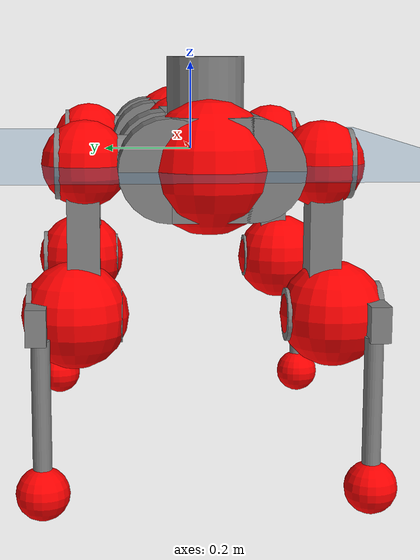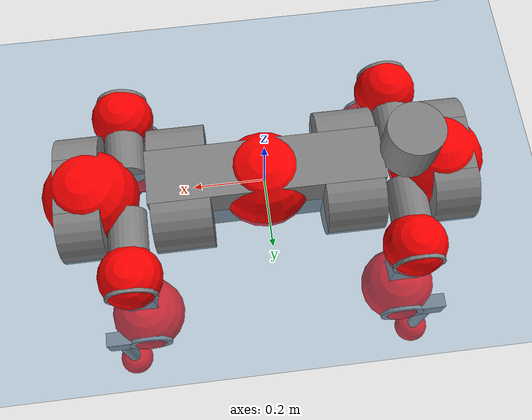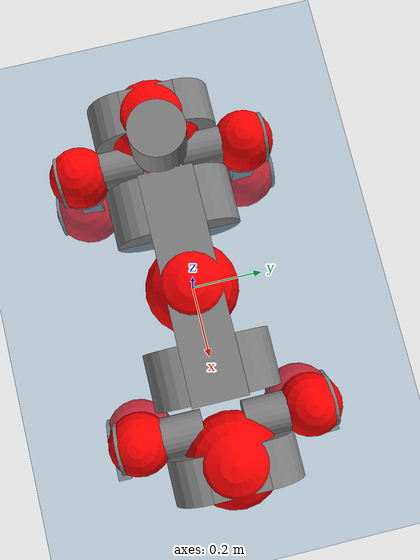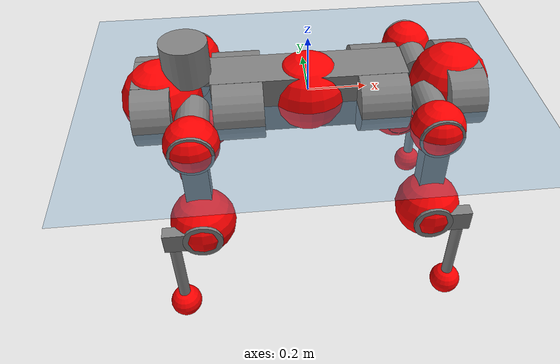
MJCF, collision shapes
<mujoco model="anymal_c">
  <compiler angle="radian" assetdir="assets" balanceinertia="true" inertiafromgeom="false"/>

  <option timestep="0.005" density="1.2" viscosity="2e-05"/>

  <size nkey="1"/>

  <visual>
    <quality shadowsize="8192"/>
    <map shadowclip="0.5"/>
  </visual>

  <default>
    <default class="/">
      <material specular="0" shininess="0.25"/>
      <geom contype="0" conaffinity="0" group="1" solref="-1000 -80"/>
      <site size="0.01 0.005 0.005" group="5"/>
      <general forcelimited="true" forcerange="-80 80" biastype="affine" gainprm="80" biasprm="0 -80 -2"/>
      <default class="anymal_c">
        <joint armature="0.01" damping="0.01" frictionloss="0.1"/>
        <default class="visual">
          <geom type="mesh" group="2"/>
          <default class="visual_zflip"/>
        </default>
        <default class="collision">
          <geom type="cylinder" group="3"/>
          <default class="foot">
            <geom size="0.03 0 0" type="sphere" condim="6" priority="1" friction="0.8 0.02 0.01" solimp="0.015 1 0.03"/>
          </default>
        </default>
      </default>
      <default class="reward_collision_sphere">
        <geom group="5" rgba="1 0 0 1"/>
      </default>
    </default>
  </default>

  <asset>
    <texture type="skybox" colorspace="auto" name="//unnamed_texture_0" builtin="gradient" rgb1="0.95 0.95 0.95" rgb2="0.95 0.95 0.95" width="100" height="600"/>
    <texture type="2d" colorspace="auto" name="texplane" builtin="checker" rgb1="0.345 0.575 0.748" rgb2="0.345 0.575 0.748" markrgb="1 1 1" width="512" height="512"/>
    <texture type="2d" colorspace="linear" name="base" file="base.png"/>
    <texture type="2d" colorspace="linear" name="top_shell" file="top_shell.png"/>
    <texture type="2d" colorspace="linear" name="bottom_shell" file="bottom_shell.png"/>
    <texture type="2d" colorspace="linear" name="remote" file="remote.png"/>
    <texture type="2d" colorspace="linear" name="hatch" file="hatch.png"/>
    <texture type="2d" colorspace="linear" name="handle" file="handle.png"/>
    <texture type="2d" colorspace="linear" name="face" file="face.png"/>
    <texture type="2d" colorspace="linear" name="battery" file="battery.png"/>
    <texture type="2d" colorspace="linear" name="lidar_cage" file="lidar_cage.png"/>
    <texture type="2d" colorspace="linear" name="depth_camera" file="depth_camera.png"/>
    <texture type="2d" colorspace="linear" name="wide_angle_camera" file="wide_angle_camera.png"/>
    <texture type="2d" colorspace="linear" name="lidar" file="lidar.png"/>
    <texture type="2d" colorspace="linear" name="drive" file="drive.png"/>
    <texture type="2d" colorspace="linear" name="hip_l" file="hip_l.png"/>
    <texture type="2d" colorspace="linear" name="shank_l" file="shank_l.png"/>
    <texture type="2d" colorspace="linear" name="foot" file="foot.png"/>
    <texture type="2d" colorspace="linear" name="thigh" file="thigh.png"/>
    <texture type="2d" colorspace="linear" name="shank_r" file="shank_r.png"/>
    <texture type="2d" colorspace="linear" name="hip_r" file="hip_r.png"/>
    <material name="MatPlane" class="/" texture="texplane" texuniform="true" texrepeat="2 2" specular="0.9" shininess="0.5"/>
    <material name="black_plastic" class="/" rgba="0.007 0.007 0.007 1"/>
    <material name="green" class="/" rgba="0.052 0.178 0.033 1"/>
    <material name="red" class="/" rgba="0.178 0.006 0.005 1"/>
    <material name="yellow" class="/" rgba="0.178 0.119 0.006 1"/>
    <material name="lwl" class="/" rgba="0.8 0.8 0.8 1"/>
    <material name="base" class="/" texture="base"/>
    <material name="top_shell" class="/" texture="top_shell"/>
    <material name="bottom_shell" class="/" texture="bottom_shell"/>
    <material name="hip_l" class="/" texture="hip_l"/>
    <material name="thigh" class="/" texture="thigh"/>
    <material name="shank_l" class="/" texture="shank_l"/>
    <material name="foot" class="/" texture="foot"/>
    <material name="hip_r" class="/" texture="hip_r"/>
    <material name="shank" class="/" texture="shank_r"/>
    <material name="hatch" class="/" texture="hatch"/>
    <material name="remote" class="/" texture="remote"/>
    <material name="handle" class="/" texture="handle"/>
    <material name="face" class="/" texture="face"/>
    <material name="depth_camera" class="/" texture="depth_camera"/>
    <material name="wide_angle_camera" class="/" texture="wide_angle_camera"/>
    <material name="battery" class="/" texture="battery"/>
    <material name="lidar_cage" class="/" texture="lidar_cage"/>
    <material name="lidar" class="/" texture="lidar"/>
    <material name="drive" class="/" texture="drive"/>
    <mesh name="base_0" class="/" file="base_0.obj"/>
    <mesh name="base_1" class="/" file="base_1.obj"/>
    <mesh name="base_2" class="/" file="base_2.obj"/>
    <mesh name="base_3" class="/" file="base_3.obj"/>
    <mesh name="base_4" class="/" file="base_4.obj"/>
    <mesh name="base_5" class="/" file="base_5.obj"/>
    <mesh name="top_shell" class="/" file="top_shell.obj"/>
    <mesh name="bottom_shell" class="/" file="bottom_shell.obj"/>
    <mesh name="remote" class="/" file="remote.obj"/>
    <mesh name="handle" class="/" file="handle.obj"/>
    <mesh name="face" class="/" file="face.obj"/>
    <mesh name="wide_angle_camera" class="/" file="wide_angle_camera.obj"/>
    <mesh name="depth_camera" class="/" file="depth_camera.obj"/>
    <mesh name="battery" class="/" file="battery.obj"/>
    <mesh name="lidar_cage" class="/" file="lidar_cage.obj"/>
    <mesh name="lidar" class="/" file="lidar.obj"/>
    <mesh name="drive" class="/" file="drive.obj"/>
    <mesh name="hip_l" class="/" file="hip_l.obj"/>
    <mesh name="thigh" class="/" file="thigh.obj"/>
    <mesh name="shank_l" class="/" file="shank_l.obj"/>
    <mesh name="foot" class="/" file="foot.obj"/>
    <mesh name="hip_r" class="/" file="hip_r.obj"/>
    <mesh name="hatch" class="/" file="hatch.obj"/>
    <mesh name="shank_r" class="/" file="shank_r.obj"/>
  </asset>

  <worldbody>
    <geom name="floor" class="/" size="100 100 0.125" type="plane" group="0" material="MatPlane"/>
    <light name="toplight_shadow" class="/" pos="0 0 5" dir="0.0990148 0.0990148 -0.990148" type="directional" ambient="0.04 0.04 0.04" diffuse="0.55 0.55 0.55" specular="0.12 0.12 0.12"/>
    <light name="toplight_fill" class="/" pos="0 0 5" dir="0.0990148 0.0990148 -0.990148" type="directional" castshadow="false" ambient="0.04 0.04 0.04" diffuse="0.3 0.3 0.3" specular="0.08 0.08 0.08"/>
    <body name="trunk" childclass="anymal_c" pos="-0.000370848 -0.00179809 -0.000628851" quat="1 -2.02894e-05 1.11903e-05 -1.59021e-05">
      <inertial pos="0.00434812 -0.00137629 0.0539722" quat="0.504146 0.497289 0.496751 0.501776" mass="26.3656" diaginertia="0.956157 1.19149 0.371767"/>
      <joint name="//unnamed_joint_0" type="free" armature="0" damping="0" frictionloss="0"/>
      <geom name="//unnamed_geom_1" class="visual" material="green" mesh="base_0"/>
      <geom name="//unnamed_geom_2" class="visual" material="yellow" mesh="base_1"/>
      <geom name="//unnamed_geom_3" class="visual" material="red" mesh="base_2"/>
      <geom name="//unnamed_geom_4" class="visual" material="black_plastic" mesh="base_3"/>
      <geom name="//unnamed_geom_5" class="visual" material="lwl" mesh="base_4"/>
      <geom name="//unnamed_geom_6" class="visual" material="base" mesh="base_5"/>
      <geom name="trunk_1" class="collision" size="0.324644 0.0783624 0.100752" type="box"/>
      <geom name="trunk_2" class="collision" size="0.100752 0.081161" pos="0.237277 0.0807185 0" quat="0.707107 0 0.707107 0"/>
      <geom name="trunk_3" class="collision" size="0.100752 0.081161" pos="-0.237277 0.0807185 0" quat="0.707107 0 0.707107 0"/>
      <geom name="trunk_4" class="collision" size="0.100752 0.081161" pos="0.237277 -0.0807185 0" quat="0.707107 0 0.707107 0"/>
      <geom name="trunk_5" class="collision" size="0.100752 0.081161" pos="-0.237277 -0.0807185 0" quat="0.707107 0 0.707107 0"/>
      <geom name="//unnamed_geom_12" class="visual" material="top_shell" mesh="top_shell"/>
      <geom name="//unnamed_geom_13" class="visual" material="bottom_shell" mesh="bottom_shell"/>
      <geom name="//unnamed_geom_14" class="visual" material="remote" mesh="remote"/>
      <geom name="//unnamed_geom_15" class="visual" material="handle" mesh="handle"/>
      <geom name="//unnamed_geom_16" class="visual" pos="0.452191 0 0" quat="1 0 0 0" material="face" mesh="face"/>
      <geom name="trunk_6" class="collision" size="0.0615704 0.0783624 0.100752" pos="0.512192 0 0" type="box"/>
      <geom name="//unnamed_geom_18" class="collision" size="0.100752 0.0615704" pos="0.512192 0.0807185 0" quat="0.707107 0 0.707107 0"/>
      <geom name="//unnamed_geom_19" class="collision" size="0.100752 0.0615704" pos="0.512192 -0.0807185 0" quat="0.707107 0 0.707107 0"/>
      <geom name="//unnamed_geom_20" class="visual" pos="0.503629 0 -0.0327165" quat="0.965926 0 0.258819 0" material="depth_camera" mesh="depth_camera"/>
      <geom name="//unnamed_geom_21" class="visual" pos="0.559647 0 0.0166816" material="wide_angle_camera" mesh="wide_angle_camera"/>
      <geom name="//unnamed_geom_22" class="visual_zflip" pos="-0.452191 0 0" quat="0 0 0 1" material="face" mesh="face"/>
      <geom name="trunk_7" class="collision" size="0.0615704 0.0783624 0.100752" pos="-0.512192 0 0" quat="0 0 0 1" type="box"/>
      <geom name="//unnamed_geom_24" class="collision" size="0.100752 0.0615704" pos="-0.512192 -0.0807185 0" quat="0 -0.707107 0 0.707107"/>
      <geom name="//unnamed_geom_25" class="collision" size="0.100752 0.0615704" pos="-0.512192 0.0807185 0" quat="0 -0.707107 0 0.707107"/>
      <geom name="//unnamed_geom_26" class="visual" pos="-0.503629 0 -0.0327165" quat="0 -0.258819 0 0.965926" material="depth_camera" mesh="depth_camera"/>
      <geom name="//unnamed_geom_27" class="visual_zflip" pos="-0.559647 0 0.0166816" quat="0 0 0 1" material="wide_angle_camera" mesh="wide_angle_camera"/>
      <geom name="//unnamed_geom_28" class="visual" material="battery" mesh="battery"/>
      <geom name="//unnamed_geom_29" class="visual" pos="0 0.0889847 0.0321936" quat="0.683013 -0.183013 0.183013 0.683013" material="depth_camera" mesh="depth_camera"/>
      <geom name="//unnamed_geom_30" class="visual" pos="0 -0.0889847 0.0321936" quat="0.683013 0.183013 0.183013 -0.683013" material="depth_camera" mesh="depth_camera"/>
      <geom name="//unnamed_geom_31" class="visual" pos="-0.397099 0 0.0819036" quat="1 0 0 0" material="lidar_cage" mesh="lidar_cage"/>
      <geom name="trunk_8" class="collision" size="0.0783624 0.0671677" pos="-0.397099 0 0.148764"/>
      <geom name="//unnamed_geom_33" class="visual" pos="-0.397099 2.44331e-05 0.158458" quat="0.707107 0 0 -0.707107" material="lidar" mesh="lidar"/>
      <geom name="//unnamed_geom_34" class="visual" pos="0.32717 0.119911 6.69064e-10" quat="0.258819 0.965926 0 0" material="drive" mesh="drive"/>
      <geom name="//unnamed_geom_35" class="visual" pos="0.32717 -0.119911 -6.69064e-10" quat="0.258819 -0.965926 0 0" material="drive" mesh="drive"/>
      <geom name="//unnamed_geom_36" class="visual" pos="-0.32717 0.119911 -6.69064e-10" quat="0 0 0.965926 -0.258819" material="drive" mesh="drive"/>
      <geom name="//unnamed_geom_37" class="visual" pos="-0.32717 -0.119911 6.69064e-10" quat="0 0 -0.965926 -0.258819" material="drive" mesh="drive"/>
      <geom name="//unnamed_geom_38" class="visual" pos="0.126548 0 0.0813465" quat="1 0 0 0" material="hatch" mesh="hatch"/>
      <geom name="//unnamed_geom_39" class="reward_collision_sphere" size="0.134335"/>
      <geom name="//unnamed_geom_40" class="reward_collision_sphere" size="0.134335" pos="0.490919 0 0"/>
      <geom name="//unnamed_geom_41" class="reward_collision_sphere" size="0.134335" pos="-0.490919 0 0"/>
      <site name="imu" pos="0.281224 0.0232616 0.0425407" size="0.0111946"/>
      <camera name="track" pos="0 -2.30624 0" quat="0.707107 0.707107 0 0" mode="trackcom"/>
      <camera name="ego_camera" pos="0.490919 0 -0.0445734" quat="-0.5 -0.5 0.5 0.5"/>
      <body name="LF_HIP" pos="0.329938 0.119051 0.000670265" quat="0.258834 0.965922 0.000741262 -0.000278107">
        <inertial pos="0.0617173 -0.0170637 -0.0063546" quat="-0.12838 0.710826 -0.133846 0.678477" mass="3.8511" diaginertia="0.00905369 0.00988424 0.00559981"/>
        <joint name="LF_HAA" pos="0 0 0" axis="0.999994 -0.00359263 -8.50937e-05" stiffness="0.00102723" range="-0.743527 0.543692" armature="0.0116409" damping="0.000311668" frictionloss="0.125355"/>
        <geom name="//unnamed_geom_42" class="visual" pos="0 3.9358e-05 -6.46452e-06" quat="0.258819 -0.965926 0 0" material="hip_l" mesh="hip_l"/>
        <geom name="//unnamed_geom_43" class="visual" pos="0.0653467 -0.0799865 -0.0458933" quat="0.183013 -0.683013 0.683013 0.183013" material="drive" mesh="drive"/>
        <geom name="//unnamed_geom_44" class="collision" size="0.0559731 0.0783624" pos="0.0653467 -0.0137911 -0.00769448" quat="-0.353553 -0.612372 0.612372 -0.353553"/>
        <body name="LF_THIGH" pos="0.0659535 -0.0847011 -0.0479436" quat="0.182328 -0.682499 0.683611 0.183379">
          <inertial pos="0.0359299 0.00269405 -0.273394" quat="0.993384 -0.00809721 -0.0817493 0.0802431" mass="4.30688" diaginertia="0.0458616 0.0601639 0.00691177"/>
          <joint name="LF_HFE" pos="0 0 0" axis="0.99997 0.00262732 0.00733096" stiffness="0.00176754" range="-3.09024 3.14492" armature="0.0120261" damping="0.0162116" frictionloss="0.126324"/>
          <geom name="//unnamed_geom_45" class="visual" pos="-0.00123735 -1.94978e-06 0" quat="0.707107 0 0 -0.707107" material="thigh" mesh="thigh"/>
          <geom name="//unnamed_geom_46" class="collision" size="0.072765 0.0447785" pos="0.0436372 0 0" quat="0.5 0.5 -0.5 -0.5"/>
          <geom name="//unnamed_geom_47" class="collision" size="0.0419798 0.0335839 0.158196" pos="0.0327279 0 -0.157471" quat="0.707107 0 0 -0.707107" type="box"/>
          <geom name="//unnamed_geom_48" class="visual" pos="0.10942 0 -0.317585" quat="1 0 0 0" material="drive" mesh="drive"/>
          <geom name="//unnamed_geom_49" class="collision" size="0.0559731 0.0783624" pos="0.0330552 0 -0.317585" quat="0.707107 0 0.707107 0"/>
          <geom name="//unnamed_geom_50" class="reward_collision_sphere" size="0.089557" pos="0.0272733 0 0"/>
          <body name="LF_SHANK" pos="0.10695 -0.000330559 -0.320496" quat="0.999999 -0.000306777 0.00130764 -0.000476197">
            <inertial pos="0.00847662 -0.0705205 -0.0893048" quat="0.992734 -0.117477 -0.00226987 -0.0259448" mass="0.829659" diaginertia="0.0153875 0.0188921 0.00193696"/>
            <joint name="LF_KFE" pos="0 0 0" axis="0.999972 -0.00656208 -0.00354159" stiffness="0.00107343" range="-3.13114 3.13745" armature="0.00978453" damping="0.00964882" frictionloss="0.109979"/>
            <geom name="//unnamed_geom_51" class="visual" pos="-0.000403473 -0.00215134 0" quat="0.707107 0 0 -0.707107" material="shank_l" mesh="shank_l"/>
            <geom name="LF_kfe_act" class="collision" size="0.0671677 0.0223892" pos="0.0218186 0 0" quat="0.5 0.5 -0.5 -0.5"/>
            <geom name="//unnamed_geom_53" class="collision" size="0.064368 0.0377818 0.0212698" pos="0.0218186 -0.0663033 0" quat="0.5 0.5 -0.5 -0.5" type="box"/>
            <geom name="//unnamed_geom_54" class="visual" pos="0.0142367 -0.10211 -0.376612" quat="0.382683 0 0 -0.92388" material="foot" mesh="foot"/>
            <geom name="LF_calf" class="collision" size="0.0195906 0.158126" pos="0.0142366 -0.101417 -0.188306" quat="0.707107 0 0 -0.707107"/>
            <geom name="LF_foot" class="foot" size="0.0303859" pos="0.0142366 -0.101417 -0.351539" quat="0.707107 0 0 -0.707107"/>
            <geom name="//unnamed_geom_57" class="reward_collision_sphere" size="0.111946" pos="-0.0545465 0 0"/>
            <geom name="//unnamed_geom_58" class="reward_collision_sphere" size="0.0559731" pos="0.0142366 -0.101417 -0.351539"/>
            <site name="LF_foot" class="foot" pos="0.0142366 -0.101417 -0.351539" quat="0.707107 0 0 -0.707107" size="0.0111946"/>
          </body>
        </body>
      </body>
      <body name="RF_HIP" pos="0.326362 -0.121922 -0.0028442" quat="0.258776 -0.965937 0.0003755 0.0002357">
        <inertial pos="0.0595031 0.0195361 -0.00782557" quat="0.137685 0.677013 0.131386 0.710939" mass="3.82025" diaginertia="0.00872846 0.0100948 0.00571505"/>
        <joint name="RF_HAA" pos="0 0 0" axis="0.999909 -0.0116427 0.00682615" range="-0.503284 0.733666" armature="0.012336" damping="0.0217393" frictionloss="0.125505"/>
        <geom name="//unnamed_geom_59" class="visual" pos="0 -3.93577e-05 -6.4645e-06" quat="0.258819 0.965926 0 0" material="hip_r" mesh="hip_r"/>
        <geom name="//unnamed_geom_60" class="visual" pos="0.0653467 0.0799865 -0.0458933" quat="0.183013 0.683013 0.683013 -0.183013" material="drive" mesh="drive"/>
        <geom name="//unnamed_geom_61" class="collision" size="0.0559731 0.0783624" pos="0.0653467 0.0137911 -0.00769448" quat="-0.353553 0.612372 0.612372 0.353553"/>
        <body name="RF_THIGH" pos="0.0656977 0.0822618 -0.0437717" quat="0.184638 0.682494 0.683236 -0.182482">
          <inertial pos="0.0309154 0.000852352 -0.27266" quat="0.993201 0.00280901 -0.0707822 0.0923834" mass="4.50221" diaginertia="0.0470898 0.0618031 0.00707478"/>
          <joint name="RF_HFE" pos="0 0 0" axis="0.99999 0.00223097 -0.00390107" range="-3.14358 3.13896" armature="0.0110038" damping="0.0204808" frictionloss="0.111446"/>
          <geom name="//unnamed_geom_62" class="visual" pos="-0.00123735 -1.94978e-06 0" quat="0.707107 0 0 -0.707107" material="thigh" mesh="thigh"/>
          <geom name="//unnamed_geom_63" class="collision" size="0.072765 0.0447785" pos="0.0436372 0 0" quat="0.5 0.5 0.5 0.5"/>
          <geom name="//unnamed_geom_64" class="collision" size="0.0419798 0.0335839 0.158196" pos="0.0327279 0 -0.157471" quat="0.707107 0 0 0.707107" type="box"/>
          <geom name="//unnamed_geom_65" class="visual" pos="0.10942 0 -0.317585" quat="1 0 0 0" material="drive" mesh="drive"/>
          <geom name="//unnamed_geom_66" class="collision" size="0.0559731 0.0783624" pos="0.0330552 0 -0.317585" quat="0.707107 0 0.707107 0"/>
          <geom name="//unnamed_geom_67" class="reward_collision_sphere" size="0.089557" pos="0.0272733 0 0"/>
          <body name="RF_SHANK" pos="0.10906 6.48855e-05 -0.320066" quat="1 -0.000527633 -0.00015755 -1.79276e-06">
            <inertial pos="0.00879316 0.071188 -0.0874297" quat="0.993694 0.109793 0.00943082 0.0207162" mass="0.819253" diaginertia="0.0159803 0.0189654 0.00197842"/>
            <joint name="RF_KFE" pos="0 0 0" axis="0.999999 0.000376176 0.00110725" range="-3.11373 3.14021" armature="0.0112956" damping="0.0103442" frictionloss="0.105608"/>
            <geom name="//unnamed_geom_68" class="visual" pos="-0.000403471 0.00215134 0" quat="0.707107 0 0 0.707107" material="shank" mesh="shank_r"/>
            <geom name="RF_kfe_act" class="collision" size="0.0671677 0.0223892" pos="0.0218186 0 0" quat="0.5 0.5 0.5 0.5"/>
            <geom name="//unnamed_geom_70" class="collision" size="0.064368 0.0377818 0.0212698" pos="0.0218186 0.0663033 0" quat="0.5 0.5 0.5 0.5" type="box"/>
            <geom name="//unnamed_geom_71" class="visual" pos="0.0142365 0.10211 -0.376612" quat="0.382683 0 0 0.92388" material="foot" mesh="foot"/>
            <geom name="RF_calf" class="collision" size="0.0195906 0.158126" pos="0.0142366 0.101417 -0.188306" quat="0.707107 0 0 0.707107"/>
            <geom name="RF_foot" class="foot" size="0.0260273" pos="0.0142366 0.101417 -0.351539" quat="0.707107 0 0 0.707107"/>
            <geom name="//unnamed_geom_74" class="reward_collision_sphere" size="0.111946" pos="-0.0545465 0 0"/>
            <geom name="//unnamed_geom_75" class="reward_collision_sphere" size="0.0559731" pos="0.0142366 0.101417 -0.351539"/>
            <site name="RF_foot" class="foot" pos="0.0142366 0.101417 -0.351539" quat="0.707107 0 0 0.707107" size="0.0111946"/>
          </body>
        </body>
      </body>
      <body name="LH_HIP" pos="-0.325906 0.120514 0.00324806" quat="0.000569506 0.00131591 0.96582 -0.259209">
        <inertial pos="0.0618836 0.0161238 -0.006539" quat="0.12752 0.684205 0.125196 0.707056" mass="4.13396" diaginertia="0.00941489 0.0103797 0.00583029"/>
        <joint name="LH_HAA" pos="0 0 0" axis="0.999982 0.00563089 -0.00218022" range="-0.471103 0.670147" armature="0.01148" damping="0.00270911" frictionloss="0.117361"/>
        <geom name="//unnamed_geom_76" class="visual" pos="0 -3.93577e-05 -6.4645e-06" quat="-0.258819 -0.965926 0 0" material="hip_r" mesh="hip_r"/>
        <geom name="//unnamed_geom_77" class="visual" pos="0.0653467 0.0799865 -0.0458933" quat="0.183013 0.683013 0.683013 -0.183013" material="drive" mesh="drive"/>
        <geom name="//unnamed_geom_78" class="collision" size="0.0559731 0.0783624" pos="0.0653467 0.0137911 -0.00769448" quat="-0.353553 0.612372 0.612372 0.353553"/>
        <body name="LH_THIGH" pos="0.0623188 0.0857295 -0.0457825" quat="0.183868 0.68288 0.682807 -0.183416">
          <inertial pos="0.0337895 0.000187502 -0.27361" quat="0.992166 -0.0106299 -0.0919922 0.083849" mass="4.38269" diaginertia="0.0471352 0.0649781 0.00747224"/>
          <joint name="LH_HFE" pos="0 0 0" axis="1 4.02035e-05 7.93773e-05" stiffness="0.00188809" range="-3.177 3.19189" armature="0.00986116" damping="0.00153902" frictionloss="0.11509"/>
          <geom name="//unnamed_geom_79" class="visual" pos="-0.00123735 -1.94978e-06 0" quat="0.707107 0 0 -0.707107" material="thigh" mesh="thigh"/>
          <geom name="//unnamed_geom_80" class="collision" size="0.072765 0.0447785" pos="0.0436372 0 0" quat="0.5 0.5 -0.5 -0.5"/>
          <geom name="//unnamed_geom_81" class="collision" size="0.0419798 0.0335839 0.158196" pos="0.0327279 0 -0.157471" quat="0.707107 0 0 -0.707107" type="box"/>
          <geom name="//unnamed_geom_82" class="visual" pos="0.10942 0 -0.317585" quat="1 0 0 0" material="drive" mesh="drive"/>
          <geom name="//unnamed_geom_83" class="collision" size="0.0559731 0.0783624" pos="0.0330552 0 -0.317585" quat="0.707107 0 0.707107 0"/>
          <geom name="//unnamed_geom_84" class="reward_collision_sphere" size="0.089557" pos="0.0272733 0 0"/>
          <body name="LH_SHANK" pos="0.106967 0.00134232 -0.315253" quat="1 0.000886919 -0.000280523 0.00021212">
            <inertial pos="0.00663447 0.0702816 -0.0901396" quat="0.993434 0.111379 0.000633337 0.0261367" mass="0.880572" diaginertia="0.0164183 0.0196931 0.00199127"/>
            <joint name="LH_KFE" pos="0 0 0" axis="0.999918 -0.0126775 -0.00188827" range="-3.15475 3.10239" armature="0.0106619" damping="0" frictionloss="0.115147"/>
            <geom name="//unnamed_geom_85" class="visual" pos="-0.000403471 0.00215134 0" quat="-0.707107 0 0 -0.707107" material="shank" mesh="shank_r"/>
            <geom name="LH_kfe_act" class="collision" size="0.0671677 0.0223892" pos="0.0218186 0 0" quat="0.5 0.5 -0.5 -0.5"/>
            <geom name="//unnamed_geom_87" class="collision" size="0.064368 0.0377818 0.0212698" pos="0.0218186 0.0663033 0" quat="0.5 0.5 -0.5 -0.5" type="box"/>
            <geom name="//unnamed_geom_88" class="visual" pos="0.0142365 0.10211 -0.376612" quat="-0.382683 0 0 -0.92388" material="foot" mesh="foot"/>
            <geom name="LH_calf" class="collision" size="0.0195906 0.158126" pos="0.0142366 0.101417 -0.188306" quat="0.707107 0 0 -0.707107"/>
            <geom name="LH_foot" class="foot" size="0.0376962" pos="0.0142366 0.101417 -0.351539" quat="0.707107 0 0 -0.707107"/>
            <geom name="//unnamed_geom_91" class="reward_collision_sphere" size="0.111946" pos="-0.0545465 0 0"/>
            <geom name="//unnamed_geom_92" class="reward_collision_sphere" size="0.0559731" pos="0.0142366 0.101417 -0.351539"/>
            <site name="LH_foot" class="foot" pos="0.0142366 0.101417 -0.351539" quat="0.707107 0 0 -0.707107" size="0.0111946"/>
          </body>
        </body>
      </body>
      <body name="RH_HIP" pos="-0.325203 -0.121272 -0.00145226" quat="0.000202685 -0.000310042 -0.965768 -0.259407">
        <inertial pos="0.063616 -0.0165212 -0.0118329" quat="-0.131512 0.71115 -0.128329 0.678603" mass="3.98267" diaginertia="0.00958353 0.0106976 0.00586794"/>
        <joint name="RH_HAA" pos="0 0 0" axis="0.999993 -0.00378434 -0.000735213" stiffness="0.00784019" range="-0.724976 0.483927" armature="0.011354" damping="0.00677784" frictionloss="0.109812"/>
        <geom name="//unnamed_geom_93" class="visual" pos="0 3.9358e-05 -6.46452e-06" quat="-0.258819 0.965926 0 0" material="hip_l" mesh="hip_l"/>
        <geom name="//unnamed_geom_94" class="visual" pos="0.0653467 -0.0799865 -0.0458933" quat="-0.183013 0.683013 -0.683013 -0.183013" material="drive" mesh="drive"/>
        <geom name="//unnamed_geom_95" class="collision" size="0.0559731 0.0783624" pos="0.0653467 -0.0137911 -0.00769448" quat="0.353553 0.612372 -0.612372 0.353553"/>
        <body name="RH_THIGH" pos="0.0640072 -0.0818227 -0.04536" quat="-0.182872 0.682943 -0.683104 -0.183072">
          <inertial pos="0.0336031 -0.000439542 -0.271001" quat="0.993309 -0.0109939 -0.0780329 0.08442" mass="4.11277" diaginertia="0.0447951 0.0582159 0.00694415"/>
          <joint name="RH_HFE" pos="0 0 0" axis="0.999997 -0.00161648 -0.00199565" range="-3.12447 3.1987" armature="0.0117585" damping="0.00588026" frictionloss="0.116153"/>
          <geom name="//unnamed_geom_96" class="visual" pos="-0.00123735 -1.94978e-06 0" quat="0.707107 0 0 -0.707107" material="thigh" mesh="thigh"/>
          <geom name="//unnamed_geom_97" class="collision" size="0.072765 0.0447785" pos="0.0436372 0 0" quat="0.5 0.5 0.5 0.5"/>
          <geom name="//unnamed_geom_98" class="collision" size="0.0419798 0.0335839 0.158196" pos="0.0327279 0 -0.157471" quat="0.707107 0 0 0.707107" type="box"/>
          <geom name="//unnamed_geom_99" class="visual" pos="0.10942 0 -0.317585" quat="1 0 0 0" material="drive" mesh="drive"/>
          <geom name="//unnamed_geom_100" class="collision" size="0.0559731 0.0783624" pos="0.0330552 0 -0.317585" quat="0.707107 0 0.707107 0"/>
          <geom name="//unnamed_geom_101" class="reward_collision_sphere" size="0.089557" pos="0.0272733 0 0"/>
          <body name="RH_SHANK" pos="0.111406 0.00190046 -0.31634" quat="0.999999 0.00113742 -0.000510036 0.000799715">
            <inertial pos="0.00477033 -0.0707642 -0.0919449" quat="0.993456 -0.112182 0.0096103 -0.019167" mass="0.831313" diaginertia="0.0157248 0.0182732 0.00194082"/>
            <joint name="RH_KFE" pos="0 0 0" axis="0.999999 -0.00146212 -0.000266098" range="-3.16114 3.14182" armature="0.0108737" damping="0.00775062" frictionloss="0.110514"/>
            <geom name="//unnamed_geom_102" class="visual" pos="-0.000403473 -0.00215134 0" quat="0.707107 0 0 -0.707107" material="shank_l" mesh="shank_l"/>
            <geom name="RH_kfe_act" class="collision" size="0.0671677 0.0223892" pos="0.0218186 0 0" quat="0.5 0.5 0.5 0.5"/>
            <geom name="//unnamed_geom_104" class="collision" size="0.064368 0.0377818 0.0212698" pos="0.0218186 -0.0663033 0" quat="0.5 0.5 0.5 0.5" type="box"/>
            <geom name="//unnamed_geom_105" class="visual" pos="0.0142367 -0.10211 -0.376612" quat="0.382683 0 0 -0.92388" material="foot" mesh="foot"/>
            <geom name="RH_calf" class="collision" size="0.0195906 0.158126" pos="0.0142366 -0.101417 -0.188306" quat="0.707107 0 0 0.707107"/>
            <geom name="RH_foot" class="foot" size="0.0283241" pos="0.0142366 -0.101417 -0.351539" quat="0.707107 0 0 0.707107"/>
            <geom name="//unnamed_geom_108" class="reward_collision_sphere" size="0.111946" pos="-0.0545465 0 0"/>
            <geom name="//unnamed_geom_109" class="reward_collision_sphere" size="0.0559731" pos="0.0142366 -0.101417 -0.351539"/>
            <site name="RH_foot" class="foot" pos="0.0142366 -0.101417 -0.351539" quat="0.707107 0 0 0.707107" size="0.0111946"/>
          </body>
        </body>
      </body>
    </body>
  </worldbody>

  <contact>
    <pair class="/" geom1="floor" geom2="LF_foot" name="//unnamed_contact_0"/>
    <pair class="/" geom1="floor" geom2="RF_foot" name="//unnamed_contact_1"/>
    <pair class="/" geom1="floor" geom2="LH_foot" name="//unnamed_contact_2"/>
    <pair class="/" geom1="floor" geom2="RH_foot" name="//unnamed_contact_3"/>
  </contact>

  <actuator>
    <general name="LF_HAA" class="/" joint="LF_HAA" forcerange="-85.5449 85.5449" gainprm="90.6224" biasprm="0 -90.6224 -2.40163"/>
    <general name="LF_HFE" class="/" joint="LF_HFE" forcerange="-81.0265 81.0265" gainprm="90.6224" biasprm="0 -90.6224 -2.40163"/>
    <general name="LF_KFE" class="/" joint="LF_KFE" forcerange="-85.2171 85.2171" gainprm="90.6224" biasprm="0 -90.6224 -2.40163"/>
    <general name="RF_HAA" class="/" joint="RF_HAA" forcerange="-90.307 90.307" gainprm="90.6224" biasprm="0 -90.6224 -2.40163"/>
    <general name="RF_HFE" class="/" joint="RF_HFE" forcerange="-90.7423 90.7423" gainprm="90.6224" biasprm="0 -90.6224 -2.40163"/>
    <general name="RF_KFE" class="/" joint="RF_KFE" forcerange="-98.0421 98.0421" gainprm="90.6224" biasprm="0 -90.6224 -2.40163"/>
    <general name="LH_HAA" class="/" joint="LH_HAA" forcerange="-87.9745 87.9745" gainprm="90.6224" biasprm="0 -90.6224 -2.40163"/>
    <general name="LH_HFE" class="/" joint="LH_HFE" forcerange="-93.6972 93.6972" gainprm="90.6224" biasprm="0 -90.6224 -2.40163"/>
    <general name="LH_KFE" class="/" joint="LH_KFE" forcerange="-81.7271 81.7271" gainprm="90.6224" biasprm="0 -90.6224 -2.40163"/>
    <general name="RH_HAA" class="/" joint="RH_HAA" forcerange="-90.8388 90.8388" gainprm="90.6224" biasprm="0 -90.6224 -2.40163"/>
    <general name="RH_HFE" class="/" joint="RH_HFE" forcerange="-89.89 89.89" gainprm="90.6224" biasprm="0 -90.6224 -2.40163"/>
    <general name="RH_KFE" class="/" joint="RH_KFE" forcerange="-90.0187 90.0187" gainprm="90.6224" biasprm="0 -90.6224 -2.40163"/>
  </actuator>

  <sensor>
    <gyro site="imu" name="imu_angular_velocity"/>
    <velocimeter site="imu" name="imu_linear_velocity"/>
    <framelinvel objtype="site" objname="LF_foot" name="LF_foot_global_linear_velocity"/>
    <framelinvel objtype="site" objname="RF_foot" name="RF_foot_global_linear_velocity"/>
    <framelinvel objtype="site" objname="LH_foot" name="LH_foot_global_linear_velocity"/>
    <framelinvel objtype="site" objname="RH_foot" name="RH_foot_global_linear_velocity"/>
  </sensor>

  <keyframe>
    <key name="home" qpos="0 0 0.55 1 0 0 0 0 0.4 -0.8 0 -0.4 0.8 0 -0.4 0.8 0 0.4 -0.8"/>
  </keyframe>
</mujoco>
